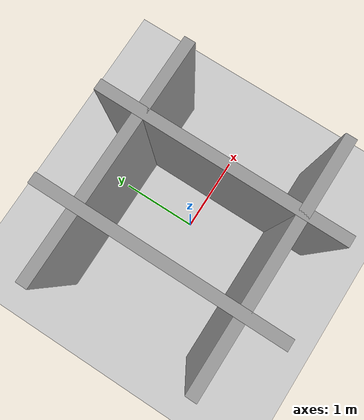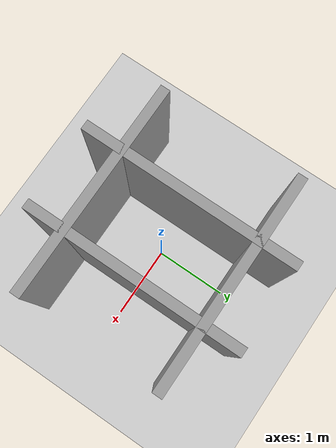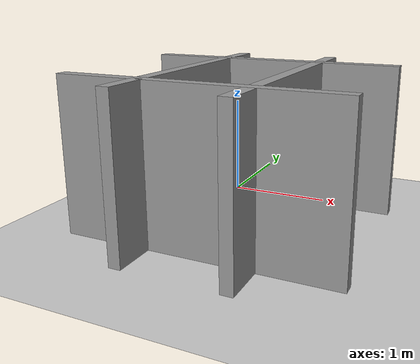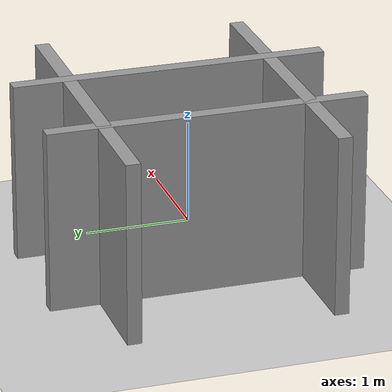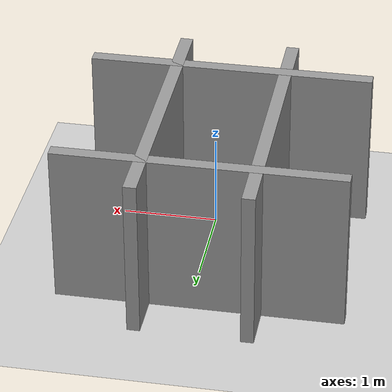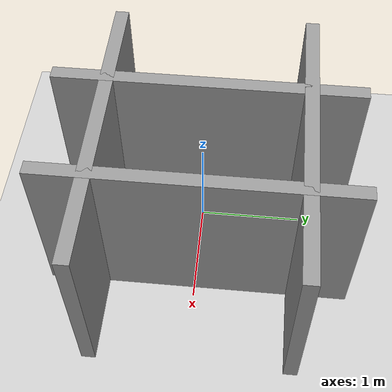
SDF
<?xml version="1.0" ?>
<sdf version="1.6">
  <world name="default">
    <include>
      <uri>model://sun</uri>
    </include>

    <physics name="ode" type="ode">
      <ode>
        <constraints>
          <contact_max_correcting_vel>0</contact_max_correcting_vel>
        </constraints>
      </ode>
      <max_step_size>0.001</max_step_size>
      <real_time_update_rate>1000</real_time_update_rate>
    </physics>

    <plugin name="stepping_plugin" filename="libstepping_plugin.so"/>

    <model name="moveit_plugin_model">
      <plugin name="gazebo_ros_moveit_planning_scene" filename="libgazebo_ros_moveit_planning_scene.so">
        <robotName>hdt_michigan</robotName>
        <robotNamespace>hdt_michigan</robotNamespace>
        <!--  This must be the same as the root frame of the robot you're using, as defined by the URDF -->
        <frameId>hdt_michigan_root</frameId>
      </plugin>
    </model>

    <include>
      <pose>0 0 -0.42 0 0 0</pose>
      <uri>model://ground_plane</uri>
    </include>

    <include>
      <name>fake_wall1</name>
      <uri>model://fake_wall</uri>
      <pose>0 -1.0 0.4 0 0 0</pose>
    </include>

    <include>
      <name>fake_wall2</name>
      <uri>model://fake_wall</uri>
      <pose>0 1.0 0.4 0 0 0</pose>
    </include>

    <include>
      <name>fake_wall3</name>
      <uri>model://fake_wall</uri>
      <pose>-0.6 0 0.4 0 0 1.5707</pose>
    </include>

    <include>
      <name>fake_wall4</name>
      <uri>model://fake_wall</uri>
      <pose>0.6 0 0.4 0 0 1.5707</pose>
    </include>

  </world>
</sdf>

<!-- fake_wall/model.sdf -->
<sdf version='1.7'>
  <model name='fake_wall'>
    <link name='unit_box::link'>
      <inertial>
        <mass>1</mass>
        <inertia>
          <ixx>0.166667</ixx>
          <ixy>0</ixy>
          <ixz>0</ixz>
          <iyy>0.166667</iyy>
          <iyz>0</iyz>
          <izz>0.166667</izz>
        </inertia>
        <pose>0 0 0 0 -0 0</pose>
      </inertial>
      <self_collide>0</self_collide>
      <enable_wind>0</enable_wind>
      <kinematic>1</kinematic>
      <pose>0 0 0 0 -0 0</pose>
      <visual name='visual'>
        <geometry>
          <box>
            <size>3.10724 0.140567 1.89855</size>
          </box>
        </geometry>
        <material>
          <script>
            <name>Gazebo/Grey</name>
            <uri>file://media/materials/scripts/gazebo.material</uri>
          </script>
          <shader type='pixel'/>
        </material>
        <pose>0 0 0 0 -0 0</pose>
        <transparency>0</transparency>
        <cast_shadows>1</cast_shadows>
      </visual>
      <collision name='collision'>
        <laser_retro>0</laser_retro>
        <max_contacts>10</max_contacts>
        <pose>0 0 0 0 -0 0</pose>
        <geometry>
          <box>
            <size>3.10724 0.140567 1.89855</size>
          </box>
        </geometry>
        <surface>
          <friction>
            <ode>
              <mu>1</mu>
              <mu2>1</mu2>
              <fdir1>0 0 0</fdir1>
              <slip1>0</slip1>
              <slip2>0</slip2>
            </ode>
            <torsional>
              <coefficient>1</coefficient>
              <patch_radius>0</patch_radius>
              <surface_radius>0</surface_radius>
              <use_patch_radius>1</use_patch_radius>
              <ode>
                <slip>0</slip>
              </ode>
            </torsional>
          </friction>
          <bounce>
            <restitution_coefficient>0</restitution_coefficient>
            <threshold>1e+06</threshold>
          </bounce>
          <contact>
            <collide_without_contact>0</collide_without_contact>
            <collide_without_contact_bitmask>1</collide_without_contact_bitmask>
            <collide_bitmask>1</collide_bitmask>
            <ode>
              <soft_cfm>0</soft_cfm>
              <soft_erp>0.2</soft_erp>
              <kp>1e+13</kp>
              <kd>1</kd>
              <max_vel>0.01</max_vel>
              <min_depth>0</min_depth>
            </ode>
            <bullet>
              <split_impulse>1</split_impulse>
              <split_impulse_penetration_threshold>-0.01</split_impulse_penetration_threshold>
              <soft_cfm>0</soft_cfm>
              <soft_erp>0.2</soft_erp>
              <kp>1e+13</kp>
              <kd>1</kd>
            </bullet>
          </contact>
        </surface>
      </collision>
    </link>
    <static>0</static>
    <allow_auto_disable>1</allow_auto_disable>
  </model>
</sdf>
